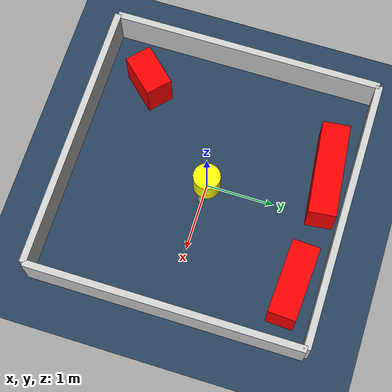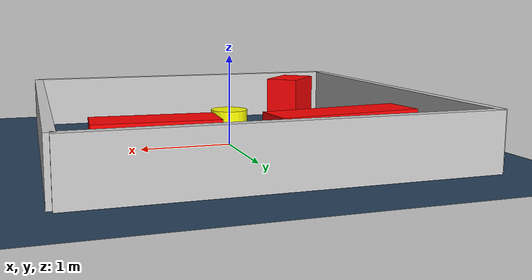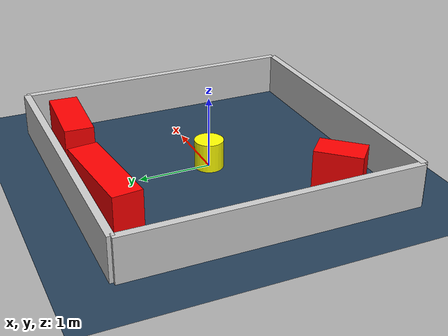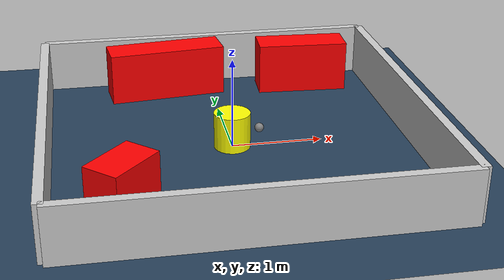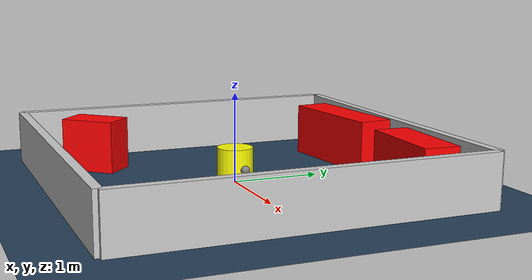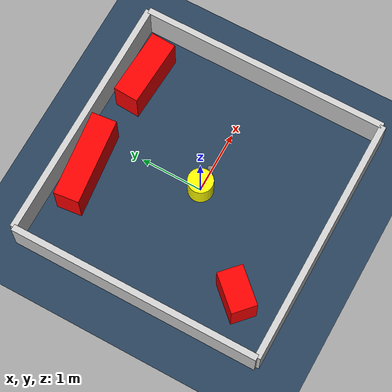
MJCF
<?xml version="1.0" ?>
<mujoco model="generated_environment">
  <option timestep="0.01" integrator="RK4" cone="elliptic"/>
  <default>
    <geom density="1"/>
  </default>
  <asset>
    <texture builtin="gradient" height="3072" rgb1="0.3 0.5 0.7" rgb2="0 0 0" type="skybox" width="512"/>
    <texture builtin="checker" height="300" mark="edge" markrgb="0.8 0.8 0.8" name="groundplane" rgb1="0.2 0.3 0.4" rgb2="0.1 0.2 0.3" type="2d" width="300"/>
    <material name="groundplane" reflectance="0.2" texrepeat="5 5" texture="groundplane" texuniform="true"/>
    <material name="robot" rgba="0.0 1.0 0.0 1"/>
  </asset>
  <worldbody>
    <light dir="0 0 -1" directional="true" pos="0 0 1.5"/>
    <geom condim="4" friction="1.0 0.005 0.001" material="groundplane" name="floor" size="0 0 0.05" type="plane"/>
    <body name="walls">
      <geom name="wall_1" condim="4" pos="-2.0 0.0 0.3" rgba="0.800000011920929 0.800000011920929 0.800000011920929 1.0" size="0.05 2.0 0.3" type="box"/>
      <geom name="wall_2" condim="4" pos="2.0 0.0 0.3" rgba="0.800000011920929 0.800000011920929 0.800000011920929 1.0" size="0.05 2.0 0.3" type="box"/>
      <geom name="wall_3" condim="4" pos="0.0 -2.0 0.3" rgba="0.800000011920929 0.800000011920929 0.800000011920929 1.0" size="2.0 0.05 0.3" type="box"/>
      <geom name="wall_4" condim="4" pos="0.0 2.0 0.3" rgba="0.800000011920929 0.800000011920929 0.800000011920929 1.0" size="2.0 0.05 0.3" type="box"/>
    </body>
    <body name="robot">
      <joint name="joint_x" type="slide" pos="0 0 0" axis="1 0 0"/>
      <joint name="joint_y" type="slide" pos="0 0 0" axis="0 1 0"/>
      <geom name="robot" type="sphere" pos="0.3 0.0 0.2" size="0.05" mass="5." friction="1.0 0.005 0.0001" condim="4" rgba="0.5 0.5 0.5 1.0"/>
      <site name="sensor_ball"/>
    </body>
    <body name="obstacle_movable_1">
      <geom name="obstacle_movable_1" condim="4" pos="0.0 0.0 0.2" euler="0 0 0.0" friction="1.0 0.005 0.001" rgba="1.0 1.0 0.0 1.0" size="0.2 0.2 0.0" type="cylinder" mass="0.1"/>
      <joint type="free"/>
    </body>
    <body name="obstacle_2_static">
      <geom name="obstacle_2_static" condim="4" pos="-1.255411421062652 -1.2800941521748066 0.3" euler="0 0 227.38724539154688" friction="1.0 0.005 0.001" rgba="1 0 0 1" size="0.321214206830024 0.2 0.3" type="box"/>
    </body>
    <body name="obstacle_3_static">
      <geom name="obstacle_3_static" condim="4" pos="-0.5566140685670723 1.632518898842888 0.3" euler="0 0 6.184688852837197" friction="1.0 0.005 0.001" rgba="1 0 0 1" size="0.6908715423793322 0.2 0.3" type="box"/>
    </body>
    <body name="obstacle_4_static">
      <geom name="obstacle_4_static" condim="4" pos="1.1363720457145465 1.587190257177818 0.3" euler="0 0 176.97975344531753" friction="1.0 0.005 0.001" rgba="1 0 0 1" size="0.53899031599628 0.2 0.3" type="box"/>
    </body>
  </worldbody>
  <actuator>
    <motor name="actuator_x" joint="joint_x" gear="1" ctrlrange="-1 1"/>
    <motor name="actuator_y" joint="joint_y" gear="1" ctrlrange="-1 1"/>
  </actuator>
</mujoco>
